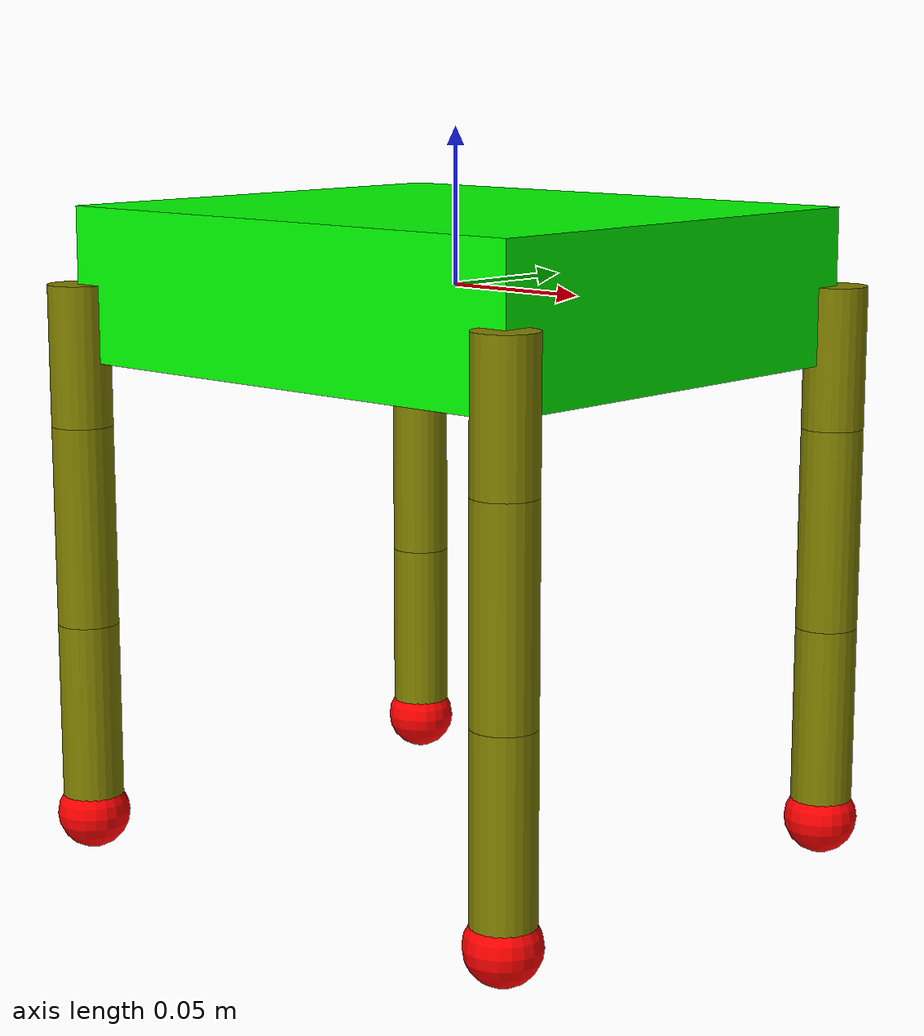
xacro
<?xml version="1.0"?>

<robot name="quadruped_robot" xmlns:xacro="http://www.ros.org/wiki/xacro">

	<material name="Red">
		<color rgba="1.0 0.0 0.0 1.0"/>
	</material>

	<material name="Green">
		<color rgba="0.0 1.0 0.0 1.0"/>
	</material>

	<material name="Blue">
		<color rgba="0.0 0.0 1.0 1.0"/>
	</material>

	<material name="Brown">
		<color rgba="0.5 0.5 0.0 1.0"/>
	</material>

	<xacro:property name="link_mu" value="0.6"/>
	<xacro:property name="link_kp" value="1e6"/>
	<xacro:property name="link_kd" value="1"/>
	<xacro:property name="link_max_vel" value="0.01"/>
	<xacro:property name="link_min_depth" value="0.001"/>
	<xacro:property name="soft_cfm" value="0.01"/>
	<xacro:property name="soft_erp" value="0.3"/>

	<xacro:property name="body_length" value="0.183"/>
	<xacro:property name="body_width" value="0.16"/>
	<xacro:property name="body_height" value="0.05"/>
	<xacro:property name="L1_length" value="0.046"/>
	<xacro:property name="L2_length" value="0.066"/>
	<xacro:property name="L3_length" value="0.065"/>
	<xacro:property name="leg_radius" value="0.01"/>

	<xacro:property name="body_mass" value="1.42"/>
	<xacro:property name="L1_mass" value="0.04"/>
	<xacro:property name="L2_mass" value="0.04"/>
	<xacro:property name="L3_mass" value="0.04"/>
	<xacro:property name="foot_mass" value="0.04"/>

	<xacro:property name="joint_damping" value="0.0"/>
	<xacro:property name="joint_friction" value="0.01"/>

	<xacro:property name="max_joint_torque" value="100.0"/>
	<xacro:property name="max_joint_velocity" value="300.0"/>

	<xacro:property name="actual_body_length" value="0.183"/>
	<xacro:property name="actual_body_width" value="0.16"/>
	<xacro:property name="robot_init_height" value="0.25"/>

	<xacro:property name="joint_controller_interface" value="$(arg joint_controller_interface)"/>

<!--////////////////////////    inertial macro    //////////////////////////-->
	<xacro:macro name="cylinder_inertial_matrix" params="origin_xyz origin_rpy mass length radius">
		<inertial>
			<origin xyz="${origin_xyz}" rpy="${origin_rpy}" />
			<mass value="${mass}"/>
			<inertia ixx="${mass*(3*radius*radius+length*length)/12.0}" ixy="0.0" ixz="0.0" iyy="${mass*(3*radius*radius+length*length)/12.0}" iyz="0.0" izz="${mass*radius*radius/2.0}" />
		</inertial>
	</xacro:macro>

	<xacro:macro name="sphere_inertial_matrix" params="origin_xyz origin_rpy mass radius">
		<inertial>
			<origin xyz="${origin_xyz}" rpy="${origin_rpy}" />
			<mass value="${mass}"/>
			<inertia ixx="${mass*radius*radius*2.0/5.0}" ixy="0.0" ixz="0.0" iyy="${mass*radius*radius*2.0/5.0}" iyz="0.0" izz="${mass*radius*radius*2.0/5.0}" />
		</inertial>
	</xacro:macro>

<!--////////////////////////    surface macro    //////////////////////////-->
	<xacro:macro name="link_surface" params="mu kp kd max_vel min_depth">
		<surface>
            <bounce>
              <restitution_coefficient>0.5</restitution_coefficient>
              <threshold>0.001</threshold>
            </bounce>
            <friction>
              <torsional>
                <coefficient>${mu}</coefficient>
                <surface_radius>0.05</surface_radius>
                <ode>
                  <slip>0</slip>
                </ode>
              </torsional>
              <ode>
                <mu>${mu}</mu>
                <mu2>${mu}</mu2>
                <fdir1>0 0 0</fdir1>
                <slip1>0</slip1>
                <slip2>0</slip2>
              </ode>
            </friction>
            <contact>
              <ode>
			  	<soft_cfm>${soft_cfm}</soft_cfm>
			  	<soft_erp>${soft_erp}</soft_erp>
                <kp value="${kp}" />
                <kd value="${kd}" />
                <max_vel>${max_vel}</max_vel>
                <min_depth>${min_depth}</min_depth>
              </ode>
            </contact>
          </surface>
	</xacro:macro>

<!--////////////////////////    joint macro    //////////////////////////-->
	<xacro:macro name="leg_joint" params="joint_name joint_type parent_link child_link origin_xyz origin_rpy axis_xyz lower upper">
		  <joint name="${joint_name}" type="${joint_type}">
   			 <parent link="${parent_link}"/>
   			 <child link="${child_link}"/>
   			 <origin xyz="${origin_xyz}" rpy="${origin_rpy}" />
   			 <axis xyz="${axis_xyz}" />
   			 <limit effort="${max_joint_torque}" velocity="${max_joint_velocity}" lower="${lower}" upper="${upper}"/>
   		 	 <dynamics damping="${joint_damping}" friction="${joint_friction}"/>
	 	 </joint>
	</xacro:macro>

<!--////////////////////////    link macro    //////////////////////////-->
    <xacro:macro name="leg_link" params="link_name origin_xyz origin_rpy mass length radius">
  		<link name="${link_name}" >
    			<visual>
      				<origin xyz="${origin_xyz}" rpy="${origin_rpy}" />
      				<geometry>
            				<cylinder radius="${radius}" length="${length}"/>
      				</geometry>
      				<material name="Brown" />
    			</visual>

    			<collision>
      				<origin xyz="${origin_xyz}" rpy="${origin_rpy}" />
      				<geometry>
            				<cylinder radius="${radius}" length="${length}"/>
      				</geometry>
					<xacro:link_surface  mu="${link_mu}" kp="${link_kp}" kd="${link_kd}" max_vel="${link_max_vel}" min_depth="${link_min_depth}"  />
    			</collision>
    			<xacro:cylinder_inertial_matrix  origin_xyz="${origin_xyz}" origin_rpy="${origin_rpy}" mass="${mass}" radius="${radius}" length="${length}"/>
  		</link>
	</xacro:macro>

<!--////////////////////////    foot link macro    //////////////////////////-->
    <xacro:macro name="foot_link" params="link_name origin_xyz origin_rpy mass radius">
  		<link name="${link_name}" >
    			<visual>
      				<origin xyz="${origin_xyz}" rpy="${origin_rpy}" />
      				<geometry>
            				<sphere radius="${radius}"/>
      				</geometry>
      				<material name="Red" />
    			</visual>

    			<collision>
      				<origin xyz="${origin_xyz}" rpy="${origin_rpy}" />
      				<geometry>
            				<sphere radius="${radius}"/>
      				</geometry>
    			</collision>
    			<xacro:sphere_inertial_matrix origin_xyz="${origin_xyz}" origin_rpy="${origin_rpy}" mass="${mass}" radius="${radius}" />
  		</link>
 	</xacro:macro>

<!--////////////////////////    leg macro    //////////////////////////-->
    <xacro:macro name="leg" params="leg_name origin_xyz">
        <xacro:leg_joint  joint_name="${leg_name}1_joint" joint_type="revolute" parent_link="body_link" child_link="${leg_name}1_link" origin_xyz="${origin_xyz}" origin_rpy="0 0 0" axis_xyz="1 0 0" lower="-1.57" upper="1.57"/>
		<xacro:leg_link link_name="${leg_name}1_link" origin_xyz="0 0 ${-L1_length/2}" origin_rpy="0 0 0" mass="${L1_mass}" length="${L1_length}" radius="${leg_radius}"/>
        <xacro:leg_joint  joint_name="${leg_name}2_joint" joint_type="revolute" parent_link="${leg_name}1_link" child_link="${leg_name}2_link" origin_xyz="0 0 ${-L1_length}" origin_rpy="0 0 0" axis_xyz="0 1 0" lower="${-3.14*1.0}" upper="${3.14*1.0}"/>
		<xacro:leg_link link_name="${leg_name}2_link" origin_xyz="0 0 ${-L2_length/2}" origin_rpy="0 0 0" mass="${L2_mass}" length="${L2_length}" radius="${leg_radius}"/>
        <xacro:leg_joint  joint_name="${leg_name}3_joint" joint_type="revolute" parent_link="${leg_name}2_link" child_link="${leg_name}3_link" origin_xyz="0 0 ${-L2_length}" origin_rpy="0 0 0" axis_xyz="0 1 0" lower="${-3.14*1.0}" upper="${3.14*1.0}"/>
		<xacro:leg_link link_name="${leg_name}3_link" origin_xyz="0 0 ${-L3_length/2}" origin_rpy="0 0 0" mass="${L3_mass}" length="${L3_length}" radius="${leg_radius}"/>
        <xacro:leg_joint  joint_name="${leg_name}4_joint" joint_type="fixed" parent_link="${leg_name}3_link" child_link="${leg_name}Foot_link" origin_xyz="0 0 ${-L3_length}" origin_rpy="0 0 0" axis_xyz="0 1 0" lower="-0.00001" upper="0.0"/>
		<xacro:foot_link  link_name="${leg_name}Foot_link" origin_xyz="0 0 0" origin_rpy="0 0 0" mass="${foot_mass}" radius="${leg_radius*1.2}" />
	</xacro:macro>

<!--////////////////////////    transmission macro    //////////////////////////-->

<!--/////////////////////////   word link  /////////////////////////////////// -->
<!--/////////////////////////   Body define  /////////////////////////////////// -->
	<link name="body_link">

 		<visual>
			<origin xyz="0 0 ${robot_init_height*0}" rpy="0 0 0"/>
			<geometry>
				<box size="${actual_body_length} ${actual_body_width} ${body_height}"/>
			</geometry>
			<material name="Green"/>
		</visual>

		<collision>
			<origin xyz="0 0 ${robot_init_height*0}" rpy="0 0 0"/>
			<geometry>
				<box size="${actual_body_length} ${actual_body_width} ${body_height}"/>
			</geometry>
		</collision>

		<inertial>
     		<origin xyz="0 0 ${robot_init_height*0}" rpy="0 0 0"/>
     		<mass value="${body_mass}"/>
     		<inertia ixx="${body_mass*(body_width*body_width+body_height*body_height)/12.0}"  ixy="0"  ixz="0" iyy="${body_mass*(body_length*body_length+body_height*body_height)/12.0}" iyz="0" izz="${body_mass*(body_length*body_length+body_width*body_width)/12.0}" />
   		</inertial>

	</link>

<!--////////////////////////    Leg define   //////////////////////////-->
	<xacro:leg leg_name="LF" origin_xyz="${body_length/2.0} ${body_width/2.0} ${robot_init_height*0}" />
	<xacro:leg leg_name="RF" origin_xyz="${body_length/2.0} ${-body_width/2.0} ${robot_init_height*0}" />
	<xacro:leg leg_name="LH" origin_xyz="${-body_length/2.0} ${body_width/2.0} ${robot_init_height*0}" />
	<xacro:leg leg_name="RH" origin_xyz="${-body_length/2.0} ${-body_width/2.0} ${robot_init_height*0}" />

<!--////////////////////////    tansmission define   //////////////////////////-->

</robot>
